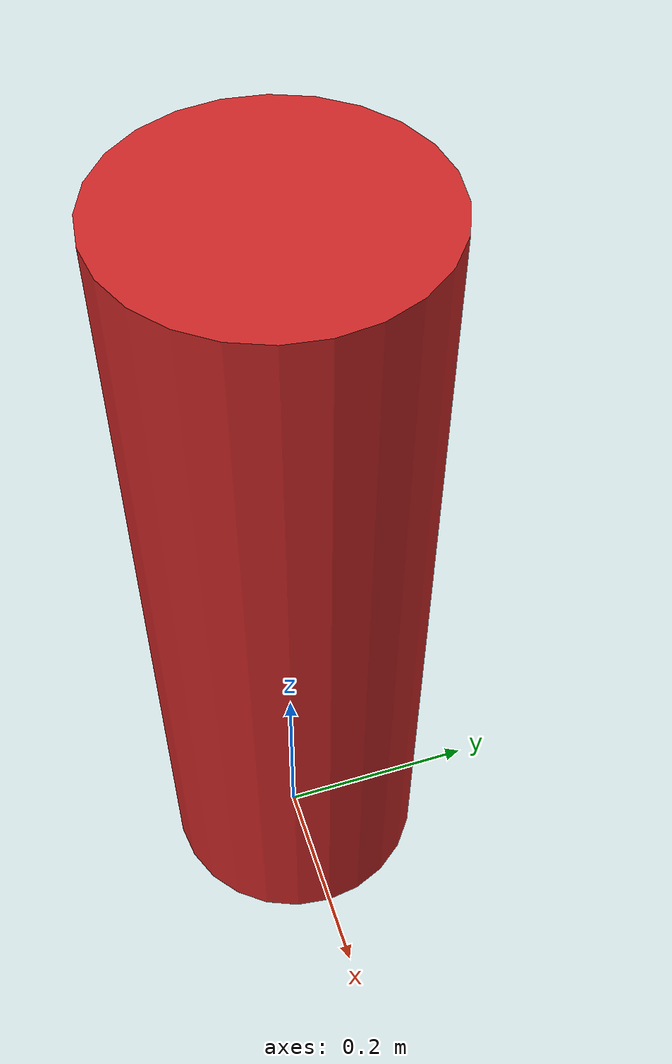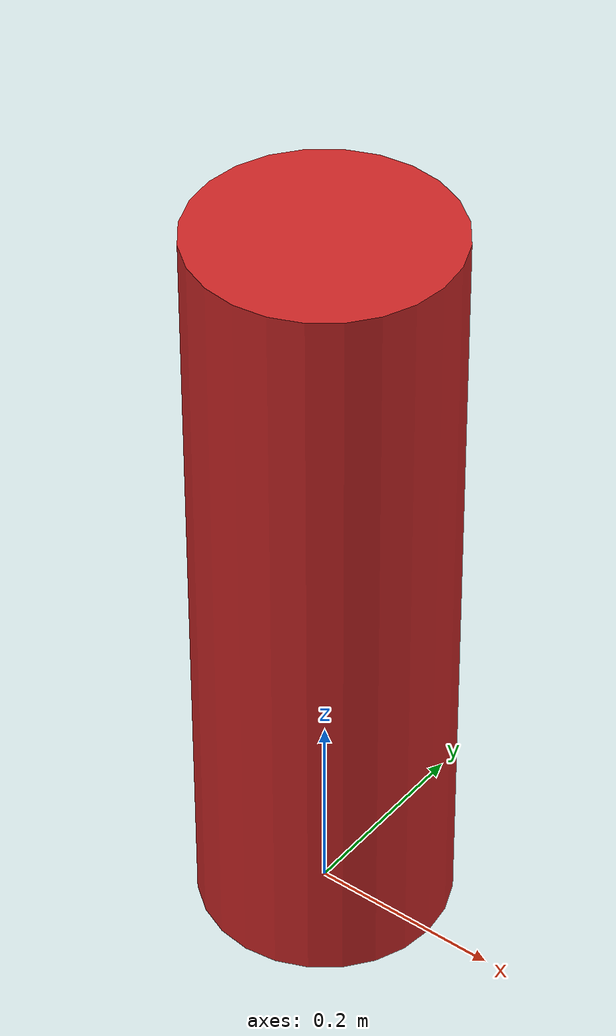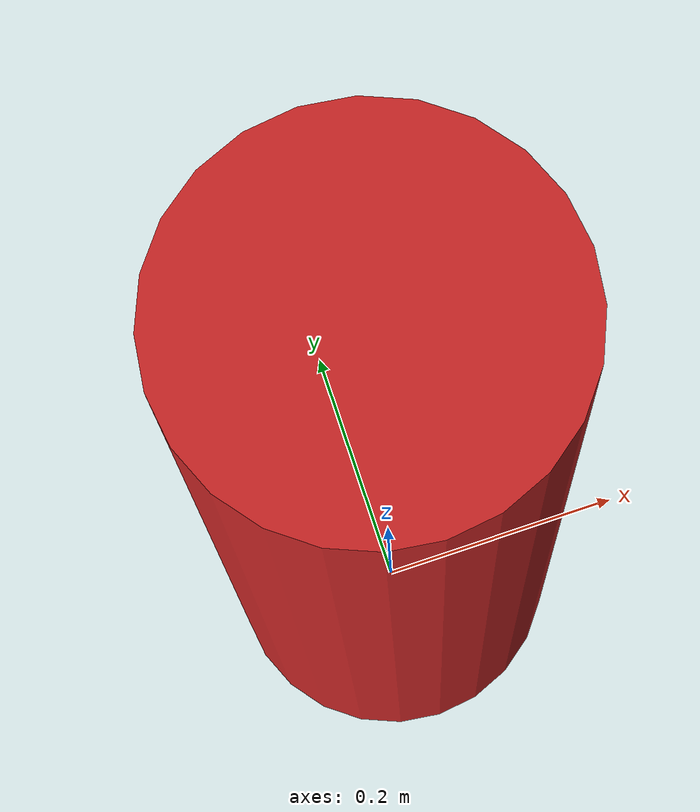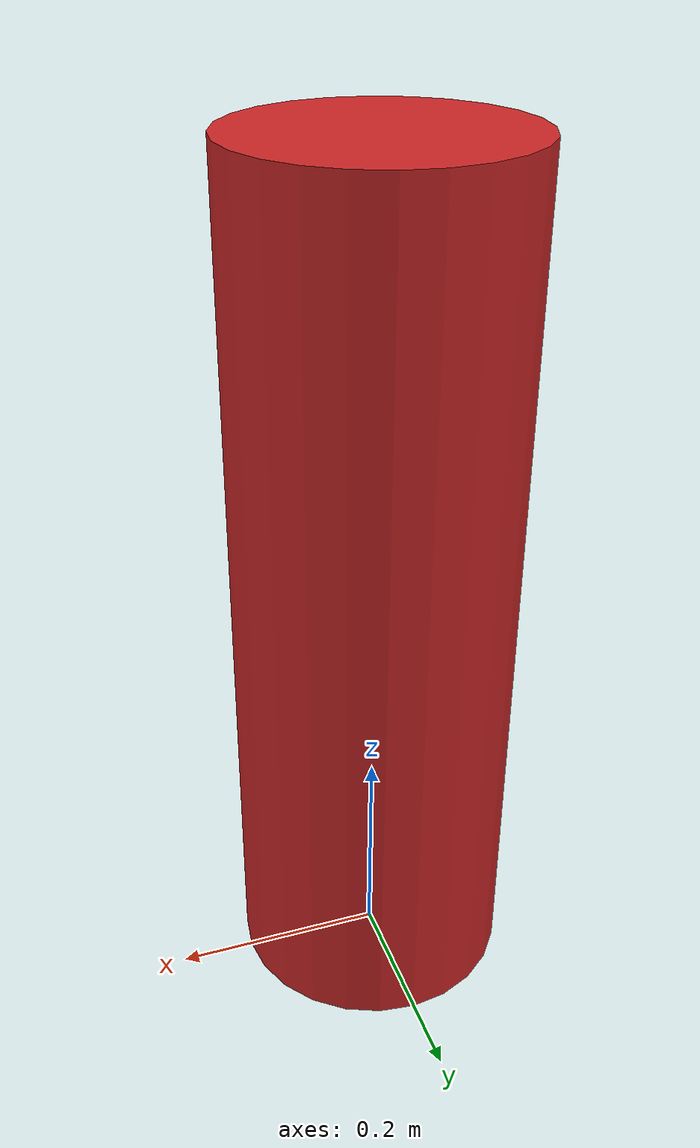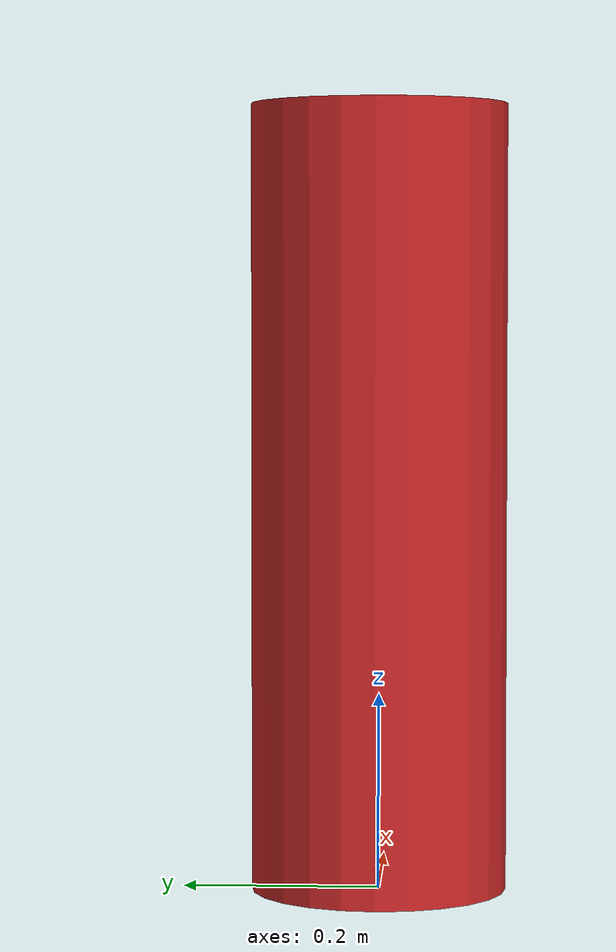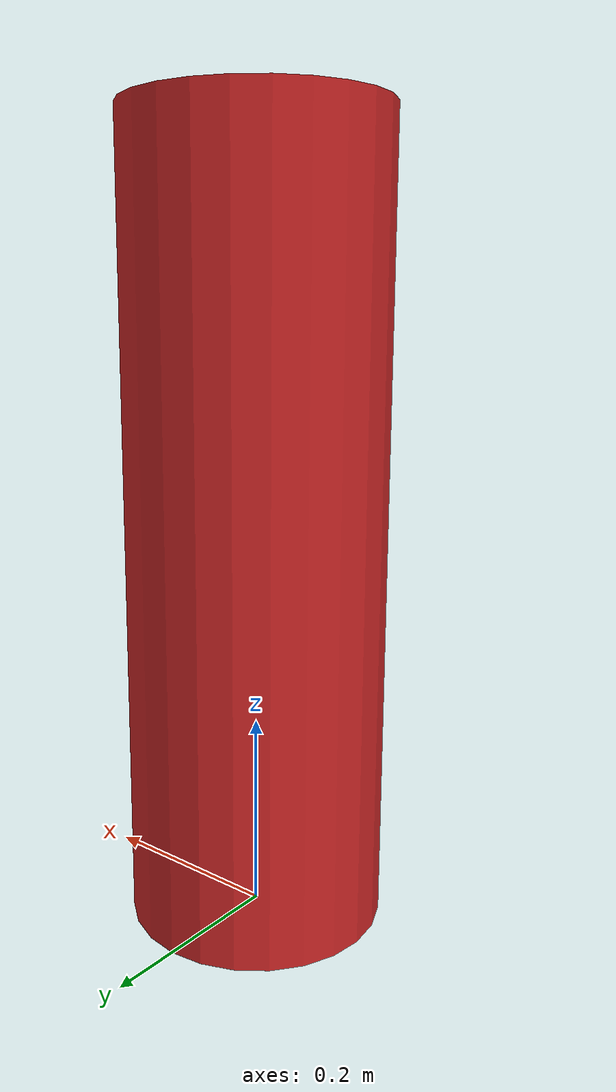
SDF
<?xml version="1.0" ?>
<sdf version="1.6">
  <model name="dynamic_obstacle">
    <static>false</static>
    <link name="base_link">
      <gravity>false</gravity>
      <pose>0 0 0.4 0 0 0</pose>
      <inertial>
        <mass>5.0</mass>
        <inertia>
          <ixx>0.3</ixx>
          <iyy>0.3</iyy>
          <izz>0.04</izz>
          <ixy>0.0</ixy>
          <ixz>0.0</ixz>
          <iyz>0.0</iyz>
        </inertia>
      </inertial>

      <!-- 2D LiDAR 센서 스캔 및 물리 충돌 판정용 Collision (반경 0.13m, 높이 0.8m) -->
      <collision name="collision">
        <geometry>
          <cylinder>
            <radius>0.13</radius>
            <length>0.8</length>
          </cylinder>
        </geometry>
        <surface>
          <contact>
            <collide_without_contact>true</collide_without_contact>
          </contact>
          <friction>
            <ode>
              <mu>0.0</mu>
              <mu2>0.0</mu2>
            </ode>
          </friction>
        </surface>
      </collision>

      <!-- 시각화 Visual (빨간색 원기둥) -->
      <visual name="visual">
        <geometry>
          <cylinder>
            <radius>0.13</radius>
            <length>0.8</length>
          </cylinder>
        </geometry>
        <material>
          <ambient>0.8 0.1 0.1 1.0</ambient>
          <diffuse>0.9 0.15 0.15 1.0</diffuse>
          <specular>0.2 0.2 0.2 1.0</specular>
          <script>
            <uri>file://media/materials/scripts/gazebo.material</uri>
            <name>Gazebo/Red</name>
          </script>
        </material>
      </visual>
    </link>

    <!-- 2D 평면 이동 플러그인 (ROS 2 cmd_vel 연동 - robot_namespace 지원) -->
    <plugin name="dynamic_obstacle_controller" filename="libgazebo_ros_planar_move.so">
      <ros>
        <remapping>cmd_vel:=cmd_vel</remapping>
        <remapping>odom:=odom</remapping>
      </ros>
      <update_rate>50</update_rate>
      <robot_base_frame>base_link</robot_base_frame>
      <odometry_frame>odom</odometry_frame>
      <publish_odom>true</publish_odom>
      <publish_odom_tf>false</publish_odom_tf>
    </plugin>
  </model>
</sdf>
